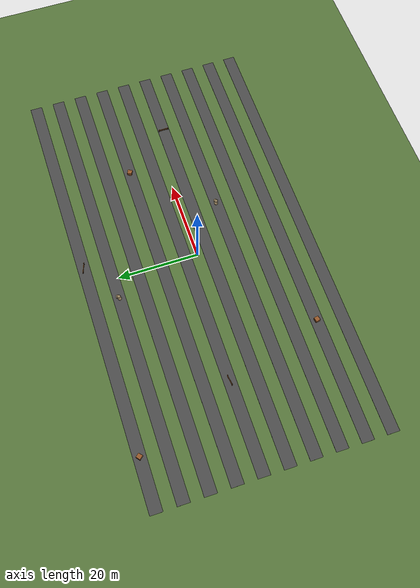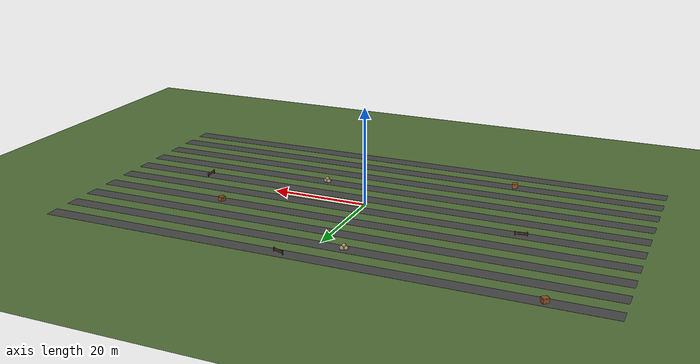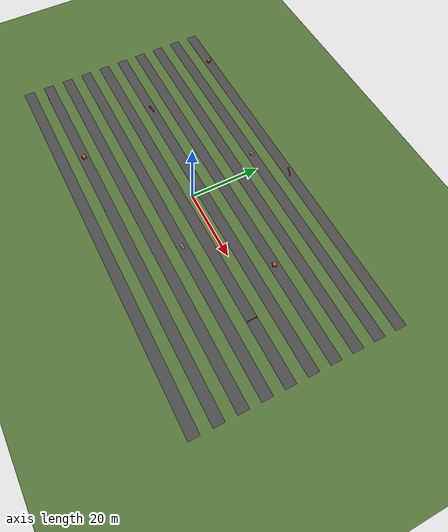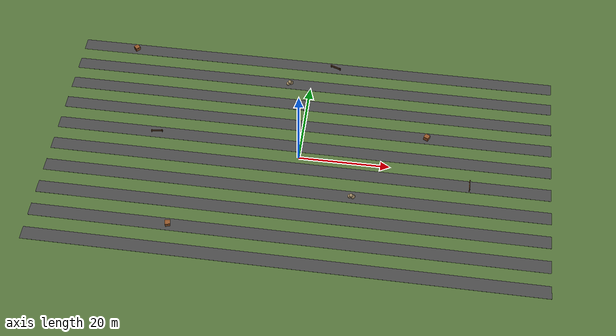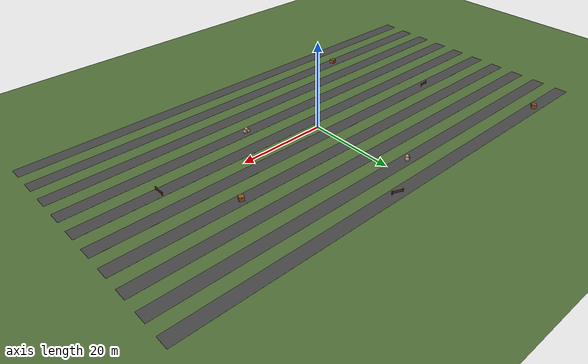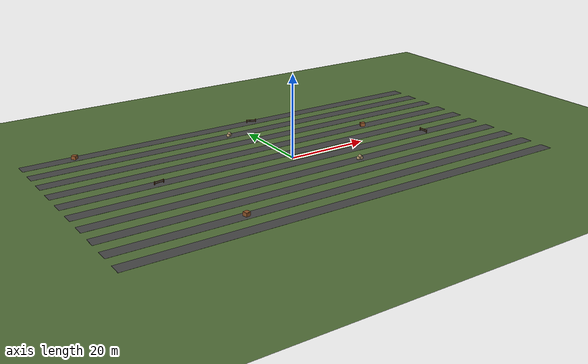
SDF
<sdf version="1.9">
 <world name="plantation">
  <physics name="uav_physics" type="ignored">
   <max_step_size>0.001</max_step_size>
   <real_time_factor>1.0</real_time_factor>
  </physics>
  <plugin filename="gz-sim-physics-system" name="gz::sim::systems::Physics"/>
  <plugin filename="gz-sim-sensors-system" name="gz::sim::systems::Sensors">
   <render_engine>ogre2</render_engine>
  </plugin>
  <plugin filename="gz-sim-scene-broadcaster-system" name="gz::sim::systems::SceneBroadcaster"/>
  <plugin filename="gz-sim-user-commands-system" name="gz::sim::systems::UserCommands"/>
  <plugin filename="gz-sim-imu-system" name="gz::sim::systems::Imu"/>
  <scene>
   <ambient>0.36 0.38 0.40 1</ambient>
   <background>0.70 0.82 0.94 1</background>
   <shadows>true</shadows>
  </scene>
  <light type="directional" name="sun_key">
   <pose>-10 -10 18 0.35 0.55 -0.75</pose>
   <diffuse>0.95 0.90 0.78 1</diffuse>
   <specular>0.25 0.24 0.20 1</specular>
   <attenuation>
    <range>1000</range>
    <constant>0.9</constant>
    <linear>0.01</linear>
    <quadratic>0.001</quadratic>
   </attenuation>
   <direction>-0.55 0.25 -0.80</direction>
  </light>
  <model name="textured_ground">
   <static>true</static>
   <link name="ground">
    <collision name="collision">
     <geometry><plane><normal>0 0 1</normal><size>120 120</size></plane></geometry>
    </collision>
    <visual name="grass_soil">
     <geometry><plane><normal>0 0 1</normal><size>120 120</size></plane></geometry>
     <material>
      <ambient>0.26 0.34 0.18 1</ambient>
      <diffuse>0.32 0.44 0.22 1</diffuse>
      <specular>0.05 0.05 0.04 1</specular>
     </material>
    </visual>
   </link>
  </model>
  <model name="soil_lanes">
   <static>true</static>
   <link name="lanes">
    <visual name="lane_00">
     <pose>0 -27.2798 0.006 0 0 0</pose>
     <geometry><box><size>110 3.0 0.01</size></box></geometry>
     <material><ambient>0.20 0.20 0.20 1</ambient><diffuse>0.28 0.28 0.28 1</diffuse></material>
    </visual>
    <visual name="lane_01">
     <pose>0 -21.2176 0.006 0 0 0</pose>
     <geometry><box><size>110 3.0 0.01</size></box></geometry>
     <material><ambient>0.20 0.20 0.20 1</ambient><diffuse>0.28 0.28 0.28 1</diffuse></material>
    </visual>
    <visual name="lane_02">
     <pose>0 -15.1554 0.006 0 0 0</pose>
     <geometry><box><size>110 3.0 0.01</size></box></geometry>
     <material><ambient>0.20 0.20 0.20 1</ambient><diffuse>0.28 0.28 0.28 1</diffuse></material>
    </visual>
    <visual name="lane_03">
     <pose>0 -9.0933 0.006 0 0 0</pose>
     <geometry><box><size>110 3.0 0.01</size></box></geometry>
     <material><ambient>0.20 0.20 0.20 1</ambient><diffuse>0.28 0.28 0.28 1</diffuse></material>
    </visual>
    <visual name="lane_04">
     <pose>0 -3.0311 0.006 0 0 0</pose>
     <geometry><box><size>110 3.0 0.01</size></box></geometry>
     <material><ambient>0.20 0.20 0.20 1</ambient><diffuse>0.28 0.28 0.28 1</diffuse></material>
    </visual>
    <visual name="lane_05">
     <pose>0 3.0311 0.006 0 0 0</pose>
     <geometry><box><size>110 3.0 0.01</size></box></geometry>
     <material><ambient>0.20 0.20 0.20 1</ambient><diffuse>0.28 0.28 0.28 1</diffuse></material>
    </visual>
    <visual name="lane_06">
     <pose>0 9.0933 0.006 0 0 0</pose>
     <geometry><box><size>110 3.0 0.01</size></box></geometry>
     <material><ambient>0.20 0.20 0.20 1</ambient><diffuse>0.28 0.28 0.28 1</diffuse></material>
    </visual>
    <visual name="lane_07">
     <pose>0 15.1554 0.006 0 0 0</pose>
     <geometry><box><size>110 3.0 0.01</size></box></geometry>
     <material><ambient>0.20 0.20 0.20 1</ambient><diffuse>0.28 0.28 0.28 1</diffuse></material>
    </visual>
    <visual name="lane_08">
     <pose>0 21.2176 0.006 0 0 0</pose>
     <geometry><box><size>110 3.0 0.01</size></box></geometry>
     <material><ambient>0.20 0.20 0.20 1</ambient><diffuse>0.28 0.28 0.28 1</diffuse></material>
    </visual>
    <visual name="lane_09">
     <pose>0 27.2798 0.006 0 0 0</pose>
     <geometry><box><size>110 3.0 0.01</size></box></geometry>
     <material><ambient>0.20 0.20 0.20 1</ambient><diffuse>0.28 0.28 0.28 1</diffuse></material>
    </visual>
   </link>
  </model>
  <include><name>crate_01</name><uri>model://wooden_crate</uri><pose>-25.0 -21.2176 0 0 0 0.20</pose></include>
  <include><name>crate_02</name><uri>model://wooden_crate</uri><pose>27.5 9.0933 0 0 0 -0.45</pose></include>
  <include><name>crate_03</name><uri>model://wooden_crate</uri><pose>-42.5 27.2798 0 0 0 0.70</pose></include>
  <include><name>sacks_01</name><uri>model://sack_stack</uri><pose>12.5 -9.0933 0 0 0 -0.25</pose></include>
  <include><name>sacks_02</name><uri>model://sack_stack</uri><pose>-5.0 21.2176 0 0 0 0.40</pose></include>
  <include><name>fence_01</name><uri>model://low_fence</uri><pose>37.5 -3.0311 0 0 0 1.5708</pose></include>
  <include><name>fence_02</name><uri>model://low_fence</uri><pose>-32.5 3.0311 0 0 0 0.15</pose></include>
  <include><name>fence_03</name><uri>model://low_fence</uri><pose>5.0 27.2798 0 0 0 -0.35</pose></include>
 </world>
</sdf>

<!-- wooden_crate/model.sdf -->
<sdf version="1.6">
  <model name="wooden_crate">
    <static>true</static>
    <link name="crate">
      <pose>0 0 0.45 0 0 0</pose>
      <collision name="collision">
        <geometry>
          <box>
            <size>1.1 1.1 0.9</size>
          </box>
        </geometry>
      </collision>
      <visual name="body">
        <geometry>
          <box>
            <size>1.1 1.1 0.9</size>
          </box>
        </geometry>
        <material>
          <ambient>0.42 0.24 0.11 1</ambient>
          <diffuse>0.55 0.32 0.15 1</diffuse>
        </material>
      </visual>
      <visual name="slat_x">
        <pose>0 0 0.15 0 0 0</pose>
        <geometry>
          <box>
            <size>1.16 0.08 0.08</size>
          </box>
        </geometry>
        <material>
          <ambient>0.26 0.14 0.06 1</ambient>
          <diffuse>0.34 0.18 0.08 1</diffuse>
        </material>
      </visual>
      <visual name="slat_y">
        <pose>0 0 0.35 0 0 1.5708</pose>
        <geometry>
          <box>
            <size>1.16 0.08 0.08</size>
          </box>
        </geometry>
        <material>
          <ambient>0.26 0.14 0.06 1</ambient>
          <diffuse>0.34 0.18 0.08 1</diffuse>
        </material>
      </visual>
    </link>
  </model>
</sdf>

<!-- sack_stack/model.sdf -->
<sdf version="1.6">
  <model name="sack_stack">
    <static>true</static>
    <link name="sacks">
      <pose>0 0 0 0 0 0</pose>
      <collision name="collision">
        <pose>0 0 0.35 0 0 0</pose>
        <geometry>
          <box>
            <size>1.6 0.9 0.7</size>
          </box>
        </geometry>
      </collision>
      <visual name="sack_1">
        <pose>-0.35 0 0.22 0.04 0.10 0.12</pose>
        <geometry>
          <sphere>
            <radius>0.45</radius>
          </sphere>
        </geometry>
        <material>
          <ambient>0.52 0.45 0.32 1</ambient>
          <diffuse>0.65 0.56 0.40 1</diffuse>
        </material>
      </visual>
      <visual name="sack_2">
        <pose>0.35 0.08 0.25 -0.05 0.08 -0.18</pose>
        <geometry>
          <sphere>
            <radius>0.48</radius>
          </sphere>
        </geometry>
        <material>
          <ambient>0.48 0.41 0.30 1</ambient>
          <diffuse>0.60 0.52 0.38 1</diffuse>
        </material>
      </visual>
      <visual name="sack_3">
        <pose>0.0 -0.05 0.70 0.02 -0.08 0.35</pose>
        <geometry>
          <sphere>
            <radius>0.42</radius>
          </sphere>
        </geometry>
        <material>
          <ambient>0.50 0.43 0.31 1</ambient>
          <diffuse>0.62 0.54 0.39 1</diffuse>
        </material>
      </visual>
    </link>
  </model>
</sdf>

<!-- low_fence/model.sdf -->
<sdf version="1.6">
  <model name="low_fence">
    <static>true</static>
    <link name="fence">
      <pose>0 0 0 0 0 0</pose>
      <collision name="collision">
        <pose>0 0 0.45 0 0 0</pose>
        <geometry>
          <box>
            <size>2.6 0.12 0.9</size>
          </box>
        </geometry>
      </collision>
      <visual name="rail_low">
        <pose>0 0 0.32 0 0 0</pose>
        <geometry>
          <box>
            <size>2.6 0.10 0.10</size>
          </box>
        </geometry>
        <material>
          <ambient>0.45 0.28 0.13 1</ambient>
          <diffuse>0.58 0.36 0.17 1</diffuse>
        </material>
      </visual>
      <visual name="rail_high">
        <pose>0 0 0.72 0 0 0</pose>
        <geometry>
          <box>
            <size>2.6 0.10 0.10</size>
          </box>
        </geometry>
        <material>
          <ambient>0.45 0.28 0.13 1</ambient>
          <diffuse>0.58 0.36 0.17 1</diffuse>
        </material>
      </visual>
      <visual name="post_left">
        <pose>-1.15 0 0.45 0 0 0</pose>
        <geometry>
          <box>
            <size>0.12 0.16 0.9</size>
          </box>
        </geometry>
        <material>
          <ambient>0.36 0.21 0.10 1</ambient>
          <diffuse>0.45 0.27 0.13 1</diffuse>
        </material>
      </visual>
      <visual name="post_right">
        <pose>1.15 0 0.45 0 0 0</pose>
        <geometry>
          <box>
            <size>0.12 0.16 0.9</size>
          </box>
        </geometry>
        <material>
          <ambient>0.36 0.21 0.10 1</ambient>
          <diffuse>0.45 0.27 0.13 1</diffuse>
        </material>
      </visual>
    </link>
  </model>
</sdf>
